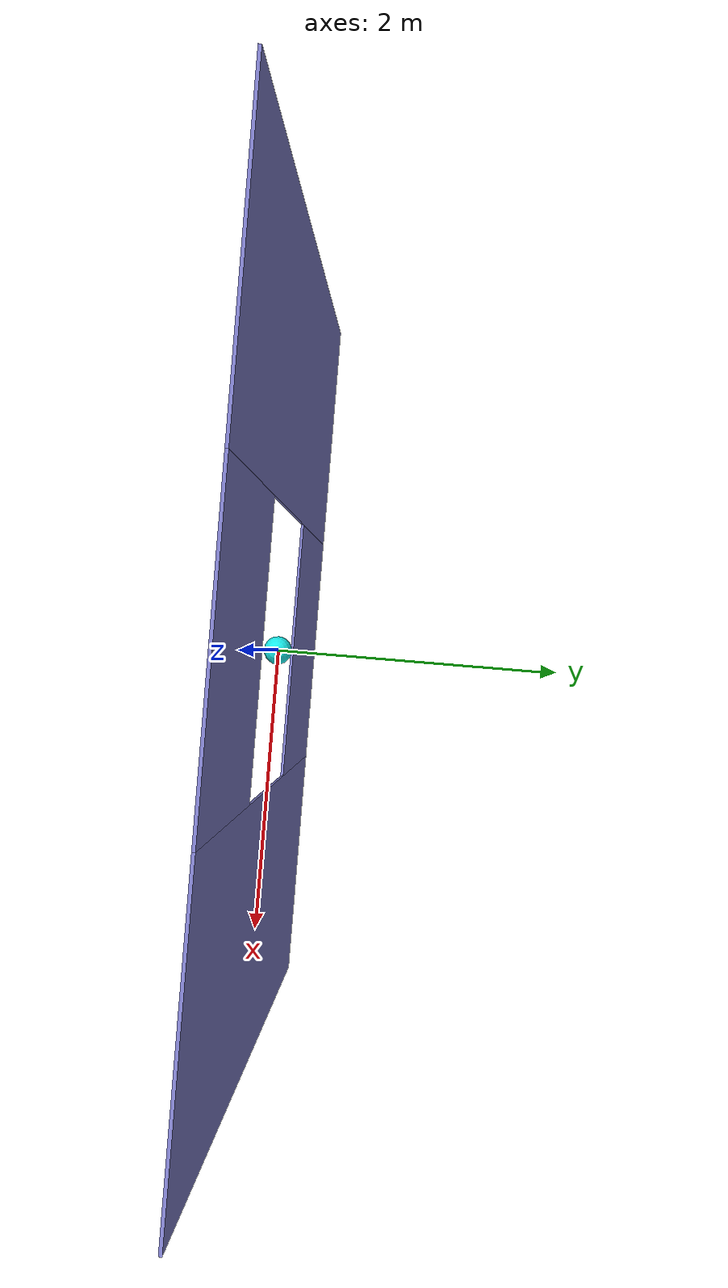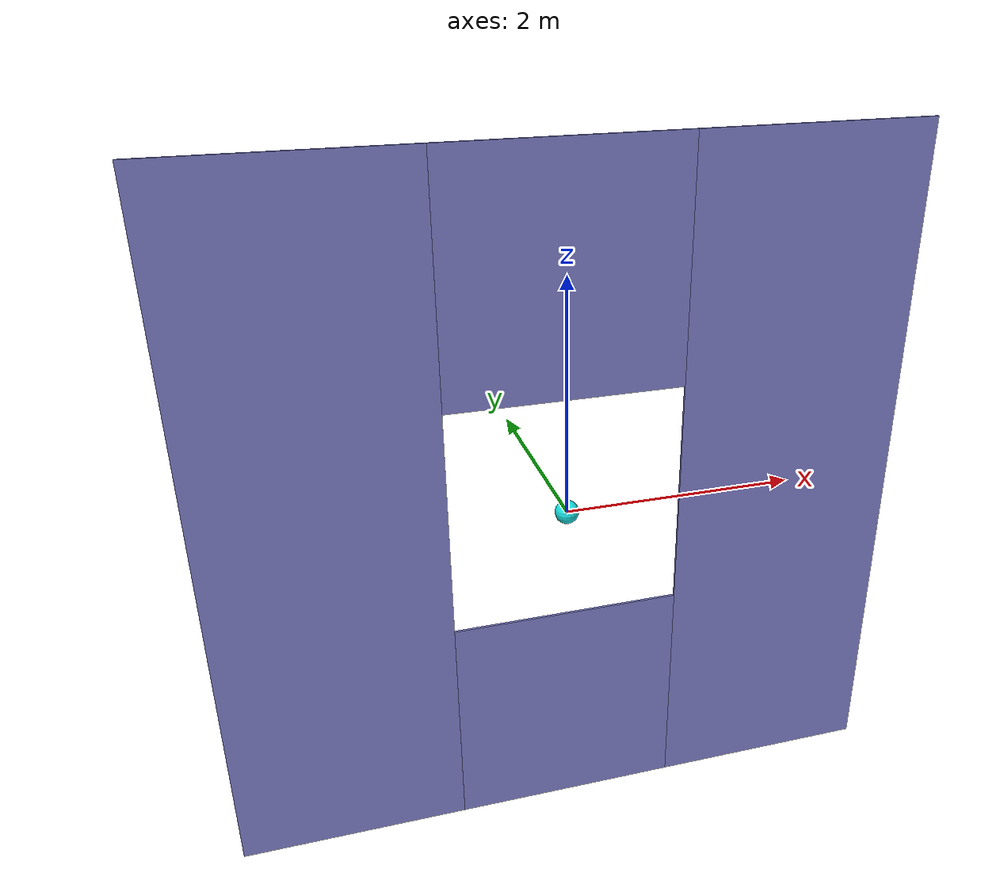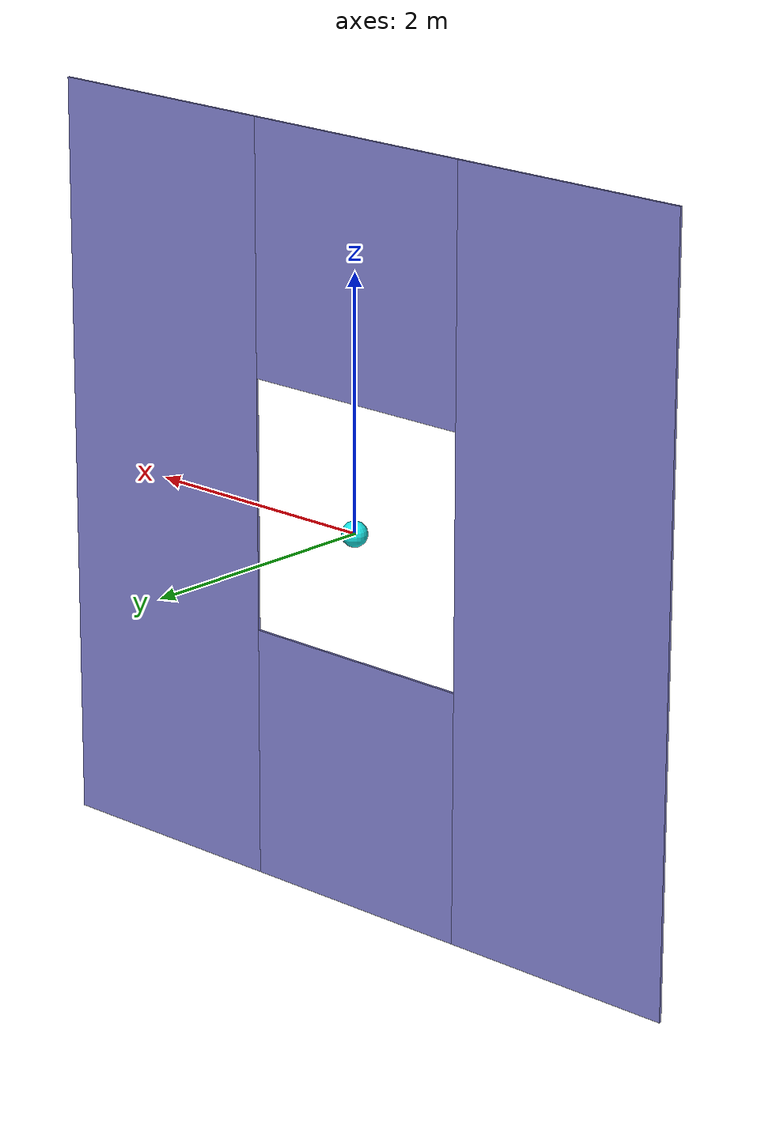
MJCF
<mujoco model="2d point">
	<compiler inertiafromgeom="true"/>
	<default>
		<joint armature="0" damping="1" limited="true"/>
		<geom contype="0" friction="1 0.1 0.1" rgba="0.7 0.7 0 1"/>
		<tendon/>
		<motor ctrlrange="-3 3"/>
	</default>
	<option gravity="0 0 -9.81" integrator="RK4" timestep="0.02"/>
	<size nstack="3000"/>
	<worldbody>
		<body name="frame">
			<geom type="box" pos="0 0 -2" size="1 0.01 1" contype="1" conaffinity="1" rgba="0.5 0.5 0.8 1"/>
			<geom type="box" pos="0 0 2" size="1 0.01 1" contype="1" conaffinity="1" rgba="0.5 0.5 0.8 1"/>
			<geom type="box" pos="2 0 0" size="1 0.01 3" contype="1" conaffinity="1" rgba="0.5 0.5 0.8 1"/>
			<geom type="box" pos="-2 0 0" size="1 0.01 3" contype="1" conaffinity="1" rgba="0.5 0.5 0.8 1"/>
		</body>
		<body name="robot" pos="0 0 0">
			<joint axis="0 0 1" name="joint0" pos="0 0 0" type="slide" limited="true" range="-1.5 1.5"/>
			<joint axis="1 0 0" name="joint1" pos="0 0 0" type="slide" limited="true" range="-1.5 1.5"/>
			<geom name="robot" pos="0 0 0" size="0.05" type="sphere" contype="1" conaffinity="1"/>
		</body>
		<geom name="obstacle" pos="0.0 0.0 0.0" rgba="0.1 0.9 0.9 1" size="0.1" type="sphere" contype="1" conaffinity="1"/>
	</worldbody>
</mujoco>
